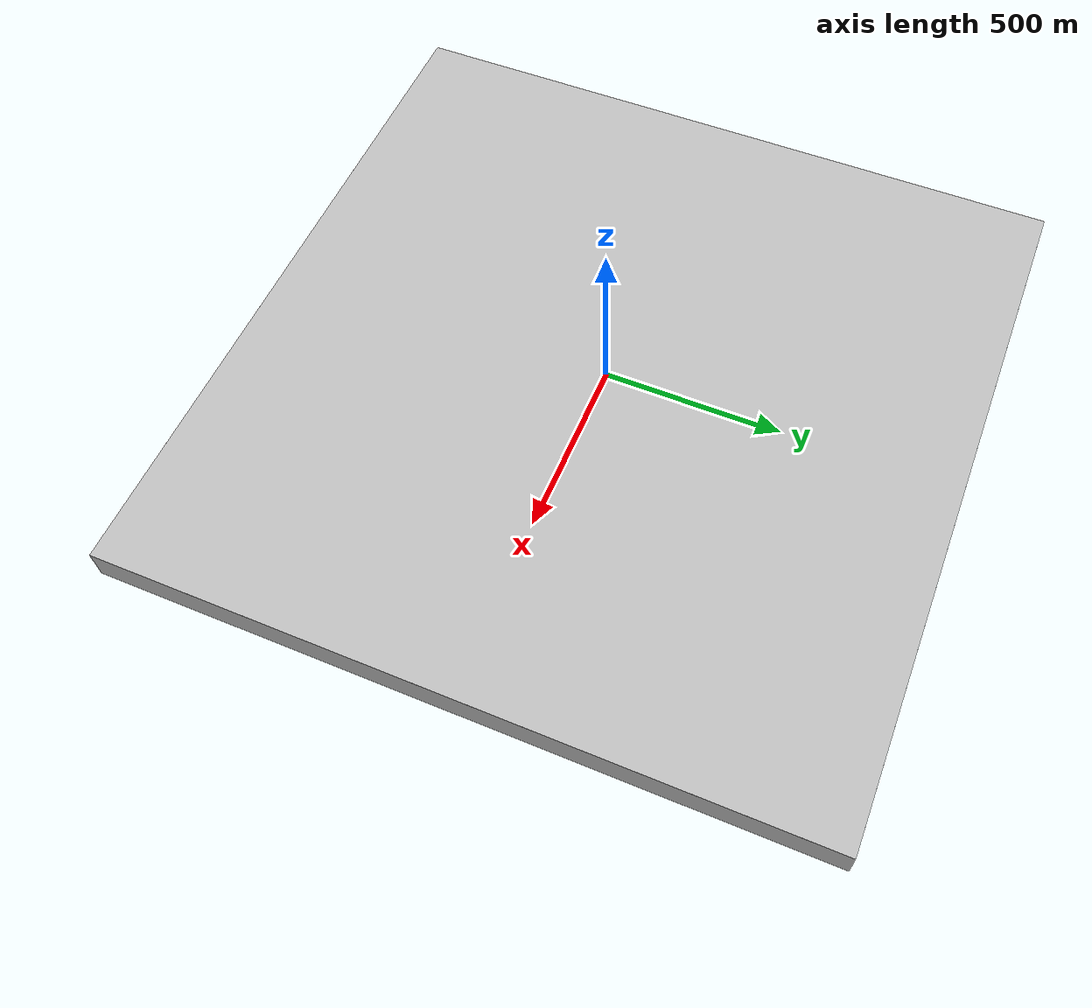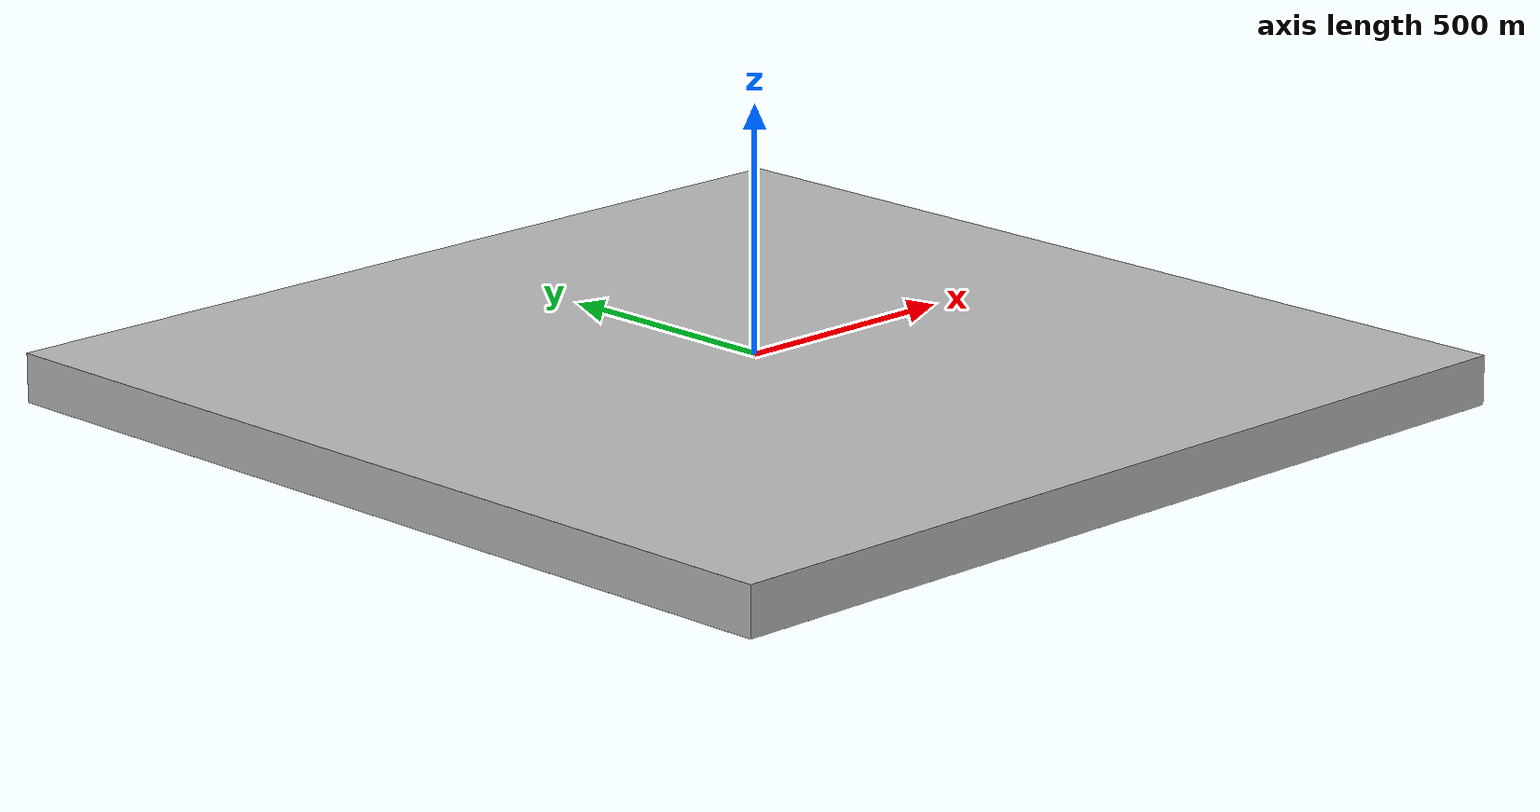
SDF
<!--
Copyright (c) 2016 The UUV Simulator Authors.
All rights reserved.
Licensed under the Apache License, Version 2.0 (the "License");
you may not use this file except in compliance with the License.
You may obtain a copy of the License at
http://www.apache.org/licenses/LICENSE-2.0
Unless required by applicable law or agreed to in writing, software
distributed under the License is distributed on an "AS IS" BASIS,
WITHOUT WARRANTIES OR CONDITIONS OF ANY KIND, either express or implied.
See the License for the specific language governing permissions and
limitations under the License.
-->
<?xml version="1.0" ?>
<sdf version="1.5">
    <world name="qual_robosub_arena">
        <physics name="default_physics" default="true" type="ode">
            <max_step_size>0.002</max_step_size>
            <real_time_factor>1</real_time_factor>
            <real_time_update_rate>500</real_time_update_rate>
            <ode>
                <solver>
                    <type>quick</type>
                    <iters>50</iters>
                    <sor>0.5</sor>
                </solver>
            </ode>
        </physics>
        <scene>
            <ambient>0.01 0.01 0.01 1.0</ambient>
            <sky>
                <clouds>
                    <speed>12</speed>
                </clouds>
            </sky>
            <shadows>1</shadows>
            <fog>
                <color>0.1 0.2 0.3 1.0</color>
                <type>linear</type>
                <density>0.001</density>
                <start>10</start>
                <end>200</end>
            </fog>
        </scene>

        <!-- Origin placed somewhere in the middle of the North Sea  -->
        <spherical_coordinates>
            <latitude_deg>56.71897669633431</latitude_deg>
            <longitude_deg>3.515625</longitude_deg>
        </spherical_coordinates>

        <!-- Global light source -->
        <light name='sun' type='directional'>
            <cast_shadows>1</cast_shadows>
            <pose frame=''>0 0 10 0 0 0</pose>
            <diffuse>0.8 0.8 0.8 1</diffuse>
            <specular>0.2 0.2 0.2 1</specular>
            <attenuation>
                <range>1000</range>
                <constant>0.9</constant>
                <linear>0.01</linear>
                <quadratic>0.001</quadratic>
            </attenuation>
            <direction>0.5 0.1 -0.9</direction>
        </light>

        <!-- Bounding box with sea surface -->
        <include>
            <uri>model://ocean_box</uri>
            <pose>0 0 0 0 0 0</pose>
        </include>

        <include>
            <uri>model://pinger</uri>
            <pose>21.096525 8.886061 -2.450000 0 0 0</pose>
            <static>true</static>
        </include>

        <plugin name="underwater_current_plugin" filename="libuuv_underwater_current_ros_plugin.so">
            <namespace>hydrodynamics</namespace>
            <constant_current>
                <topic>current_velocity</topic>
                <velocity>
                    <mean>0</mean>
                    <min>0</min>
                    <max>5</max>
                    <mu>0.0</mu>
                    <noiseAmp>0.0</noiseAmp>
                </velocity>

                <horizontal_angle>
                    <mean>0</mean>
                    <min>-3.141592653589793238</min>
                    <max>3.141592653589793238</max>
                    <mu>0.0</mu>
                    <noiseAmp>0.0</noiseAmp>
                </horizontal_angle>

                <vertical_angle>
                    <mean>0</mean>
                    <min>-3.141592653589793238</min>
                    <max>3.141592653589793238</max>
                    <mu>0.0</mu>
                    <noiseAmp>0.0</noiseAmp>
                </vertical_angle>
            </constant_current>
        </plugin>

        <plugin name="sc_interface" filename="libuuv_sc_ros_interface_plugin.so"/>

    </world>
</sdf>

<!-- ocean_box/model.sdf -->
<sdf version="1.5">
  <model name="ocean_box">
    <static>true</static>
    <link name="link">
      <visual name="ground">
        <cast_shadows>false</cast_shadows>
        <pose>0 0 -100 0 0 0</pose>
        <geometry>
          <box>
            <size>2000 2000 .1</size>
          </box>
        </geometry>
        <material>
          <script>
            <uri>file://Media/materials/scripts/sand.material</uri>
            <name>UUVSimulator/SandAndStones</name>
          </script>
        </material>
      </visual>

      <collision name="ground">
        <pose>0 0 -100 0 0 0</pose>
        <geometry>
          <box>
            <size>2000 2000 .1</size>
          </box>
        </geometry>
      </collision>

      <visual name="surface">
        <cast_shadows>false</cast_shadows>
        <pose>0 0 0 0 0 0</pose>
        <geometry>
          <box>
            <size>2000 2000 .1</size>
          </box>
        </geometry>
        <material>
          <script>
            <uri>file://Media/materials/scripts/water.material</uri>
            <name>UUVSimulator/StaticDeepWater</name>
          </script>
        </material>
      </visual>

      <visual name="north">
        <cast_shadows>false</cast_shadows>
        <pose>1000 0 -50 0 0 0</pose>
        <geometry>
          <box>
            <size>.1 2000 100</size>
          </box>
        </geometry>
        <material>
          <script>
            <uri>file://Media/materials/scripts/water.material</uri>
            <name>UUVSimulator/SeaWall</name>
          </script>
        </material>
      </visual>

      <visual name="south">
        <cast_shadows>false</cast_shadows>
        <pose>-1000 0 -50 0 0 0</pose>
        <geometry>
          <box>
            <size>.1 2000 100</size>
          </box>
        </geometry>
        <material>
          <script>
            <uri>file://Media/materials/scripts/water.material</uri>
            <name>UUVSimulator/SeaWall</name>
          </script>
        </material>
      </visual>

      <visual name="east">
        <cast_shadows>false</cast_shadows>
        <pose>0 -1000 -50 0 0 0</pose>
        <geometry>
          <box>
            <size>2000 .1 100</size>
          </box>
        </geometry>
        <material>
          <script>
            <uri>file://Media/materials/scripts/water.material</uri>
            <name>UUVSimulator/SeaWall</name>
          </script>
        </material>
      </visual>

      <visual name="west">
        <cast_shadows>false</cast_shadows>
        <pose>0 1000 -50 0 0 0</pose>
        <geometry>
          <box>
            <size>2000 .1 100</size>
          </box>
        </geometry>
        <material>
          <script>
            <uri>file://Media/materials/scripts/water.material</uri>
            <name>UUVSimulator/SeaWall</name>
          </script>
        </material>
      </visual>
    </link>
  </model>
</sdf>

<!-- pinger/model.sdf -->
<sdf version='1.7'>
  <model name='pinger'>
    <static>1</static>
    <link name='link'>
      <inertial>
        <mass>1</mass>
        <inertia>
          <ixx>0.145833</ixx>
          <ixy>0</ixy>
          <ixz>0</ixz>
          <iyy>0.145833</iyy>
          <iyz>0</iyz>
          <izz>0.125</izz>
        </inertia>
        <pose>0 0 0 0 0 0</pose>
      </inertial>
      <self_collide>0</self_collide>
      <enable_wind>0</enable_wind>
      <kinematic>0</kinematic>
      <pose>0 0 0 0 0 0</pose>
      <gravity>0</gravity>
      <visual name='visual'>
        <geometry>
          <cylinder>
            <radius>0.04</radius>
            <length>0.1</length>
          </cylinder>
        </geometry>
        <material>
          <script>
            <name>Gazebo/Grey</name>
            <uri>file://media/materials/scripts/gazebo.material</uri>
          </script>
          <shader type='pixel'>
            <normal_map>__default__</normal_map>
          </shader>
          <ambient>1 1 1 1</ambient>
          <diffuse>0.7 0.7 0.7 1</diffuse>
          <specular>0.01 0.01 0.01 1</specular>
          <emissive>0 0 0 1</emissive>
        </material>
        <pose>0 0 0 0 -0 0</pose>
        <transparency>0</transparency>
        <cast_shadows>1</cast_shadows>
      </visual>
      <collision name='collision1'>
        <laser_retro>0</laser_retro>
        <max_contacts>10</max_contacts>
        <pose>0 0 0 0 1 0</pose>
        <geometry>
          <cylinder>
            <radius>0.04</radius>
            <length>0.1</length>
          </cylinder>
        </geometry>
        <surface>
          <friction>
            <ode>
              <mu>1</mu>
              <mu2>1</mu2>
              <fdir1>0 0 0</fdir1>
              <slip1>0</slip1>
              <slip2>0</slip2>
            </ode>
            <torsional>
              <coefficient>1</coefficient>
              <patch_radius>0</patch_radius>
              <surface_radius>0</surface_radius>
              <use_patch_radius>1</use_patch_radius>
              <ode>
                <slip>0</slip>
              </ode>
            </torsional>
          </friction>
          <bounce>
            <restitution_coefficient>0</restitution_coefficient>
            <threshold>1e+06</threshold>
          </bounce>
          <contact>
            <collide_without_contact>0</collide_without_contact>
            <collide_without_contact_bitmask>1</collide_without_contact_bitmask>
            <collide_bitmask>1</collide_bitmask>
            <ode>
              <soft_cfm>0</soft_cfm>
              <soft_erp>0.2</soft_erp>
              <kp>1e+13</kp>
              <kd>1</kd>
              <max_vel>0.01</max_vel>
              <min_depth>0</min_depth>
            </ode>
            <bullet>
              <split_impulse>1</split_impulse>
              <split_impulse_penetration_threshold>-0.01</split_impulse_penetration_threshold>
              <soft_cfm>0</soft_cfm>
              <soft_erp>0.2</soft_erp>
              <kp>1e+13</kp>
              <kd>1</kd>
            </bullet>
          </contact>
        </surface>
      </collision>
    </link>
    <static>0</static>
    <allow_auto_disable>1</allow_auto_disable>
  </model>
</sdf>
